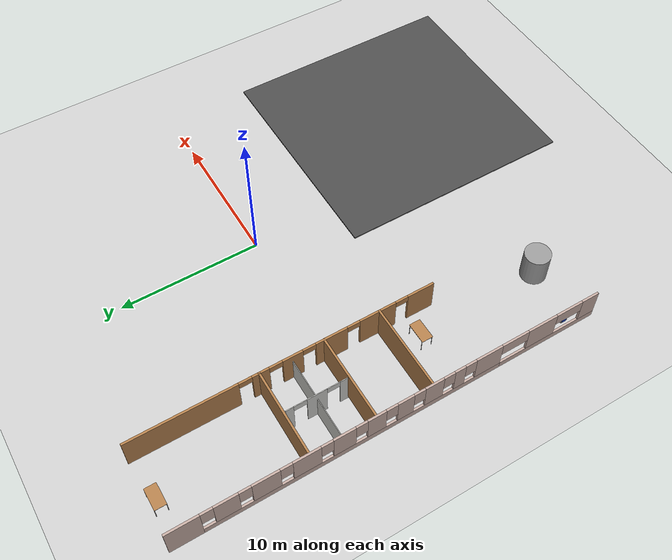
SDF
<sdf version="1.7">
 <world name="default">
  <model name="ground_plane">
   <static>1</static>
   <link name="link">
    <collision name="collision">
     <geometry><plane><normal>0 0 1</normal><size>100 100</size></plane></geometry>
     <surface>
      <contact><collide_bitmask>65535</collide_bitmask></contact>
      <friction><ode><mu>100</mu><mu2>50</mu2></ode></friction>
     </surface>
    </collision>
    <visual name="visual">
     <cast_shadows>0</cast_shadows>
     <geometry><plane><normal>0 0 1</normal><size>100 100</size></plane></geometry>
     <material>
      <script><uri>file://media/materials/scripts/gazebo.material</uri><name>Gazebo/Grey</name></script>
     </material>
    </visual>
   </link>
  </model>
  <model name="Office">
   <pose>0.30406 -0.9941 0 0 -0 0</pose>
   <link name="Wall_12">
    <pose>-10.5 4.175 0 0 -0 1.5708</pose>
    <visual name="Wall_12_Visual_0">
     <pose>-9.76618 0 1.25 0 -0 0</pose>
     <geometry><box><size>1.96818 0.15 2.5</size></box></geometry>
     <material>
      <script><uri>file://media/materials/scripts/gazebo.material</uri><name>Gazebo/Wood</name></script>
      <ambient>1 1 1 1</ambient>
     </material>
     <meta><layer>0</layer></meta>
    </visual>
    <collision name="Wall_12_Collision_0">
     <geometry><box><size>1.96818 0.15 2.5</size></box></geometry>
     <pose>-9.76618 0 1.25 0 -0 0</pose>
    </collision>
    <visual name="Wall_12_Visual_1">
     <pose>-6.55733 0 1.25 0 -0 0</pose>
     <geometry><box><size>2.64952 0.15 2.5</size></box></geometry>
     <material>
      <script><uri>file://media/materials/scripts/gazebo.material</uri><name>Gazebo/Wood</name></script>
      <ambient>1 1 1 1</ambient>
     </material>
     <meta><layer>0</layer></meta>
    </visual>
    <collision name="Wall_12_Collision_1">
     <geometry><box><size>2.64952 0.15 2.5</size></box></geometry>
     <pose>-6.55733 0 1.25 0 -0 0</pose>
    </collision>
    <visual name="Wall_12_Visual_2">
     <pose>-3.19706 0 1.25 0 -0 0</pose>
     <geometry><box><size>2.27101 0.15 2.5</size></box></geometry>
     <material>
      <script><uri>file://media/materials/scripts/gazebo.material</uri><name>Gazebo/Wood</name></script>
      <ambient>1 1 1 1</ambient>
     </material>
     <meta><layer>0</layer></meta>
    </visual>
    <collision name="Wall_12_Collision_2">
     <geometry><box><size>2.27101 0.15 2.5</size></box></geometry>
     <pose>-3.19706 0 1.25 0 -0 0</pose>
    </collision>
    <visual name="Wall_12_Visual_3">
     <pose>-0.451144 0 1.25 0 -0 0</pose>
     <geometry><box><size>1.42083 0.15 2.5</size></box></geometry>
     <material>
      <script><uri>file://media/materials/scripts/gazebo.material</uri><name>Gazebo/Wood</name></script>
      <ambient>1 1 1 1</ambient>
     </material>
     <meta><layer>0</layer></meta>
    </visual>
    <collision name="Wall_12_Collision_3">
     <geometry><box><size>1.42083 0.15 2.5</size></box></geometry>
     <pose>-0.451144 0 1.25 0 -0 0</pose>
    </collision>
    <visual name="Wall_12_Visual_4">
     <pose>1.7422 0 1.25 0 -0 0</pose>
     <geometry><box><size>1.16586 0.15 2.5</size></box></geometry>
     <material>
      <script><uri>file://media/materials/scripts/gazebo.material</uri><name>Gazebo/Wood</name></script>
      <ambient>1 1 1 1</ambient>
     </material>
     <meta><layer>0</layer></meta>
    </visual>
    <collision name="Wall_12_Collision_4">
     <geometry><box><size>1.16586 0.15 2.5</size></box></geometry>
     <pose>1.7422 0 1.25 0 -0 0</pose>
    </collision>
    <visual name="Wall_12_Visual_5">
     <pose>6.9877 0 1.25 0 -0 0</pose>
     <geometry><box><size>7.52514 0.15 2.5</size></box></geometry>
     <material>
      <script><uri>file://media/materials/scripts/gazebo.material</uri><name>Gazebo/Wood</name></script>
      <ambient>1 1 1 1</ambient>
     </material>
     <meta><layer>0</layer></meta>
    </visual>
    <collision name="Wall_12_Collision_5">
     <geometry><box><size>7.52514 0.15 2.5</size></box></geometry>
     <pose>6.9877 0 1.25 0 -0 0</pose>
    </collision>
    <visual name="Wall_12_Visual_6">
     <pose>-8.33209 0 2.25 0 -0 0</pose>
     <geometry><box><size>0.9 0.15 0.5</size></box></geometry>
     <material>
      <script><uri>file://media/materials/scripts/gazebo.material</uri><name>Gazebo/Wood</name></script>
      <ambient>1 1 1 1</ambient>
     </material>
     <meta><layer>0</layer></meta>
    </visual>
    <collision name="Wall_12_Collision_6">
     <geometry><box><size>0.9 0.15 0.5</size></box></geometry>
     <pose>-8.33209 0 2.25 0 -0 0</pose>
    </collision>
    <visual name="Wall_12_Visual_7">
     <pose>-4.78257 0 2.25 0 -0 0</pose>
     <geometry><box><size>0.9 0.15 0.5</size></box></geometry>
     <material>
      <script><uri>file://media/materials/scripts/gazebo.material</uri><name>Gazebo/Wood</name></script>
      <ambient>1 1 1 1</ambient>
     </material>
     <meta><layer>0</layer></meta>
    </visual>
    <collision name="Wall_12_Collision_7">
     <geometry><box><size>0.9 0.15 0.5</size></box></geometry>
     <pose>-4.78257 0 2.25 0 -0 0</pose>
    </collision>
    <visual name="Wall_12_Visual_8">
     <pose>-1.61156 0 2.25 0 -0 0</pose>
     <geometry><box><size>0.9 0.15 0.5</size></box></geometry>
     <material>
      <script><uri>file://media/materials/scripts/gazebo.material</uri><name>Gazebo/Wood</name></script>
      <ambient>1 1 1 1</ambient>
     </material>
     <meta><layer>0</layer></meta>
    </visual>
    <collision name="Wall_12_Collision_8">
     <geometry><box><size>0.9 0.15 0.5</size></box></geometry>
     <pose>-1.61156 0 2.25 0 -0 0</pose>
    </collision>
    <visual name="Wall_12_Visual_9">
     <pose>0.709272 0 2.25 0 -0 0</pose>
     <geometry><box><size>0.9 0.15 0.5</size></box></geometry>
     <material>
      <script><uri>file://media/materials/scripts/gazebo.material</uri><name>Gazebo/Wood</name></script>
      <ambient>1 1 1 1</ambient>
     </material>
     <meta><layer>0</layer></meta>
    </visual>
    <collision name="Wall_12_Collision_9">
     <geometry><box><size>0.9 0.15 0.5</size></box></geometry>
     <pose>0.709272 0 2.25 0 -0 0</pose>
    </collision>
    <visual name="Wall_12_Visual_10">
     <pose>2.77513 0 2.25 0 -0 0</pose>
     <geometry><box><size>0.9 0.15 0.5</size></box></geometry>
     <material>
      <script><uri>file://media/materials/scripts/gazebo.material</uri><name>Gazebo/Wood</name></script>
      <ambient>1 1 1 1</ambient>
     </material>
     <meta><layer>0</layer></meta>
    </visual>
    <collision name="Wall_12_Collision_10">
     <geometry><box><size>0.9 0.15 0.5</size></box></geometry>
     <pose>2.77513 0 2.25 0 -0 0</pose>
    </collision>
   </link>
   <link name="Wall_38">
    <collision name="Wall_38_Collision">
     <geometry><box><size>6 0.15 2.5</size></box></geometry>
     <pose>0 0 1.25 0 -0 0</pose>
    </collision>
    <visual name="Wall_38_Visual">
     <pose>0 0 1.25 0 -0 0</pose>
     <geometry><box><size>6 0.15 2.5</size></box></geometry>
     <material>
      <script><uri>file://media/materials/scripts/gazebo.material</uri><name>Gazebo/Wood</name></script>
      <ambient>1 1 1 1</ambient>
     </material>
     <meta><layer>0</layer></meta>
    </visual>
    <pose>-13.425 6 0 0 -0 3.14159</pose>
   </link>
   <link name="Wall_41">
    <collision name="Wall_41_Collision">
     <geometry><box><size>6 0.15 2.5</size></box></geometry>
     <pose>0 0 1.25 0 -0 0</pose>
    </collision>
    <visual name="Wall_41_Visual">
     <pose>0 0 1.25 0 -0 0</pose>
     <geometry><box><size>6 0.15 2.5</size></box></geometry>
     <material>
      <script><uri>file://media/materials/scripts/gazebo.material</uri><name>Gazebo/Wood</name></script>
      <ambient>1 1 1 1</ambient>
     </material>
     <meta><layer>0</layer></meta>
    </visual>
    <pose>-13.425 1.5 0 0 -0 0</pose>
   </link>
   <link name="Wall_43">
    <collision name="Wall_43_Collision">
     <geometry><box><size>6 0.15 2.5</size></box></geometry>
     <pose>0 0 1.25 0 -0 0</pose>
    </collision>
    <visual name="Wall_43_Visual">
     <pose>0 0 1.25 0 -0 0</pose>
     <geometry><box><size>6 0.15 2.5</size></box></geometry>
     <material>
      <script><uri>file://media/materials/scripts/gazebo.material</uri><name>Gazebo/Wood</name></script>
      <ambient>1 1 1 1</ambient>
     </material>
     <meta><layer>0</layer></meta>
    </visual>
    <pose>-13.425 -2.5 0 0 -0 0</pose>
   </link>
   <link name="Wall_45">
    <collision name="Wall_45_Collision">
     <geometry><box><size>5.9 0.05 2</size></box></geometry>
     <pose>0 0 1 0 -0 0</pose>
    </collision>
    <visual name="Wall_45_Visual">
     <pose>0 0 1 0 -0 0</pose>
     <geometry><box><size>5.9 0.05 2</size></box></geometry>
     <material>
      <script><uri>file://media/materials/scripts/gazebo.material</uri><name>Gazebo/CeilingTiled</name></script>
      <ambient>1 1 1 1</ambient>
     </material>
     <meta><layer>0</layer></meta>
    </visual>
    <pose>-13.425 3.75 0 0 -0 3.14159</pose>
   </link>
   <link name="Wall_47">
    <pose>-13.5 3.75 0 0 -0 -1.5708</pose>
    <visual name="Wall_47_Visual_0">
     <pose>-1.85464 0 1.25 0 -0 0</pose>
     <geometry><box><size>0.540727 0.05 2.5</size></box></geometry>
     <material>
      <script><uri>file://media/materials/scripts/gazebo.material</uri><name>Gazebo/CeilingTiled</name></script>
      <ambient>1 1 1 1</ambient>
     </material>
     <meta><layer>0</layer></meta>
    </visual>
    <collision name="Wall_47_Collision_0">
     <geometry><box><size>0.540727 0.05 2.5</size></box></geometry>
     <pose>-1.85464 0 1.25 0 -0 0</pose>
    </collision>
    <visual name="Wall_47_Visual_1">
     <pose>-0.00216 0 1.25 0 -0 0</pose>
     <geometry><box><size>1.36423 0.05 2.5</size></box></geometry>
     <material>
      <script><uri>file://media/materials/scripts/gazebo.material</uri><name>Gazebo/CeilingTiled</name></script>
      <ambient>1 1 1 1</ambient>
     </material>
     <meta><layer>0</layer></meta>
    </visual>
    <collision name="Wall_47_Collision_1">
     <geometry><box><size>1.36423 0.05 2.5</size></box></geometry>
     <pose>-0.00216 0 1.25 0 -0 0</pose>
    </collision>
    <visual name="Wall_47_Visual_2">
     <pose>1.85248 0 1.25 0 -0 0</pose>
     <geometry><box><size>0.545047 0.05 2.5</size></box></geometry>
     <material>
      <script><uri>file://media/materials/scripts/gazebo.material</uri><name>Gazebo/CeilingTiled</name></script>
      <ambient>1 1 1 1</ambient>
     </material>
     <meta><layer>0</layer></meta>
    </visual>
    <collision name="Wall_47_Collision_2">
     <geometry><box><size>0.545047 0.05 2.5</size></box></geometry>
     <pose>1.85248 0 1.25 0 -0 0</pose>
    </collision>
    <visual name="Wall_47_Visual_3">
     <pose>-1.13427 0 2.25 0 -0 0</pose>
     <geometry><box><size>0.9 0.05 0.5</size></box></geometry>
     <material>
      <script><uri>file://media/materials/scripts/gazebo.material</uri><name>Gazebo/CeilingTiled</name></script>
      <ambient>1 1 1 1</ambient>
     </material>
     <meta><layer>0</layer></meta>
    </visual>
    <collision name="Wall_47_Collision_3">
     <geometry><box><size>0.9 0.05 0.5</size></box></geometry>
     <pose>-1.13427 0 2.25 0 -0 0</pose>
    </collision>
    <visual name="Wall_47_Visual_4">
     <pose>1.12995 0 2.25 0 -0 0</pose>
     <geometry><box><size>0.9 0.05 0.5</size></box></geometry>
     <material>
      <script><uri>file://media/materials/scripts/gazebo.material</uri><name>Gazebo/CeilingTiled</name></script>
      <ambient>1 1 1 1</ambient>
     </material>
     <meta><layer>0</layer></meta>
    </visual>
    <collision name="Wall_47_Collision_4">
     <geometry><box><size>0.9 0.05 0.5</size></box></geometry>
     <pose>1.12995 0 2.25 0 -0 0</pose>
    </collision>
   </link>
   <link name="Wall_5">
    <pose>-16.5 0 0 0 -0 -1.5708</pose>
    <visual name="Wall_5_Visual_0">
     <pose>-13.9772 0 1.25 0 -0 0</pose>
     <geometry><box><size>2.19564 0.15 2.5</size></box></geometry>
     <material>
      <script><uri>file://media/materials/scripts/gazebo.material</uri><name>Gazebo/Grey</name></script>
      <ambient>0.760784 0.662745 0.627451 1</ambient>
     </material>
     <meta><layer>0</layer></meta>
    </visual>
    <collision name="Wall_5_Collision_0">
     <geometry><box><size>2.19564 0.15 2.5</size></box></geometry>
     <pose>-13.9772 0 1.25 0 -0 0</pose>
    </collision>
    <visual name="Wall_5_Visual_1">
     <pose>-2.64558 0 0.25 0 -0 0</pose>
     <geometry><box><size>20.4675 0.15 0.5</size></box></geometry>
     <material>
      <script><uri>file://media/materials/scripts/gazebo.material</uri><name>Gazebo/Grey</name></script>
      <ambient>0.760784 0.662745 0.627451 1</ambient>
     </material>
     <meta><layer>0</layer></meta>
    </visual>
    <collision name="Wall_5_Collision_1">
     <geometry><box><size>20.4675 0.15 0.5</size></box></geometry>
     <pose>-2.64558 0 0.25 0 -0 0</pose>
    </collision>
    <visual name="Wall_5_Visual_2">
     <pose>11.3316 0 0.25 0 -0 0</pose>
     <geometry><box><size>7.48681 0.15 0.5</size></box></geometry>
     <material>
      <script><uri>file://media/materials/scripts/gazebo.material</uri><name>Gazebo/Grey</name></script>
      <ambient>0.760784 0.662745 0.627451 1</ambient>
     </material>
     <meta><layer>0</layer></meta>
    </visual>
    <collision name="Wall_5_Collision_2">
     <geometry><box><size>7.48681 0.15 0.5</size></box></geometry>
     <pose>11.3316 0 0.25 0 -0 0</pose>
    </collision>
    <visual name="Wall_5_Visual_3">
     <pose>10.6889 0 1.5 0 -0 0</pose>
     <geometry><box><size>2.20133 0.15 2</size></box></geometry>
     <material>
      <script><uri>file://media/materials/scripts/gazebo.material</uri><name>Gazebo/Grey</name></script>
      <ambient>0.760784 0.662745 0.627451 1</ambient>
     </material>
     <meta><layer>0</layer></meta>
    </visual>
    <collision name="Wall_5_Collision_3">
     <geometry><box><size>2.20133 0.15 2</size></box></geometry>
     <pose>10.6889 0 1.5 0 -0 0</pose>
    </collision>
    <visual name="Wall_5_Visual_4">
     <pose>14.4323 0 1.5 0 -0 0</pose>
     <geometry><box><size>1.28547 0.15 2</size></box></geometry>
     <material>
      <script><uri>file://media/materials/scripts/gazebo.material</uri><name>Gazebo/Grey</name></script>
      <ambient>0.760784 0.662745 0.627451 1</ambient>
     </material>
     <meta><layer>0</layer></meta>
    </visual>
    <collision name="Wall_5_Collision_4">
     <geometry><box><size>1.28547 0.15 2</size></box></geometry>
     <pose>14.4323 0 1.5 0 -0 0</pose>
    </collision>
    <visual name="Wall_5_Visual_5">
     <pose>-11.292 0 1.5 0 -0 0</pose>
     <geometry><box><size>1.57467 0.15 2</size></box></geometry>
     <material>
      <script><uri>file://media/materials/scripts/gazebo.material</uri><name>Gazebo/Grey</name></script>
      <ambient>0.760784 0.662745 0.627451 1</ambient>
     </material>
     <meta><layer>0</layer></meta>
    </visual>
    <collision name="Wall_5_Collision_5">
     <geometry><box><size>1.57467 0.15 2</size></box></geometry>
     <pose>-11.292 0 1.5 0 -0 0</pose>
    </collision>
    <visual name="Wall_5_Visual_6">
     <pose>-8.79558 0 1.5 0 -0 0</pose>
     <geometry><box><size>1.81822 0.15 2</size></box></geometry>
     <material>
      <script><uri>file://media/materials/scripts/gazebo.material</uri><name>Gazebo/Grey</name></script>
      <ambient>0.760784 0.662745 0.627451 1</ambient>
     </material>
     <meta><layer>0</layer></meta>
    </visual>
    <collision name="Wall_5_Collision_6">
     <geometry><box><size>1.81822 0.15 2</size></box></geometry>
     <pose>-8.79558 0 1.5 0 -0 0</pose>
    </collision>
    <visual name="Wall_5_Visual_7">
     <pose>-6.15707 0 1.5 0 -0 0</pose>
     <geometry><box><size>1.8588 0.15 2</size></box></geometry>
     <material>
      <script><uri>file://media/materials/scripts/gazebo.material</uri><name>Gazebo/Grey</name></script>
      <ambient>0.760784 0.662745 0.627451 1</ambient>
     </material>
     <meta><layer>0</layer></meta>
    </visual>
    <collision name="Wall_5_Collision_7">
     <geometry><box><size>1.8588 0.15 2</size></box></geometry>
     <pose>-6.15707 0 1.5 0 -0 0</pose>
    </collision>
    <visual name="Wall_5_Visual_8">
     <pose>-3.66725 0 1.5 0 -0 0</pose>
     <geometry><box><size>1.52083 0.15 2</size></box></geometry>
     <material>
      <script><uri>file://media/materials/scripts/gazebo.material</uri><name>Gazebo/Grey</name></script>
      <ambient>0.760784 0.662745 0.627451 1</ambient>
     </material>
     <meta><layer>0</layer></meta>
    </visual>
    <collision name="Wall_5_Collision_8">
     <geometry><box><size>1.52083 0.15 2</size></box></geometry>
     <pose>-3.66725 0 1.5 0 -0 0</pose>
    </collision>
    <visual name="Wall_5_Visual_9">
     <pose>-1.4651 0 1.5 0 -0 0</pose>
     <geometry><box><size>1.28347 0.15 2</size></box></geometry>
     <material>
      <script><uri>file://media/materials/scripts/gazebo.material</uri><name>Gazebo/Grey</name></script>
      <ambient>0.760784 0.662745 0.627451 1</ambient>
     </material>
     <meta><layer>0</layer></meta>
    </visual>
    <collision name="Wall_5_Collision_9">
     <geometry><box><size>1.28347 0.15 2</size></box></geometry>
     <pose>-1.4651 0 1.5 0 -0 0</pose>
    </collision>
    <visual name="Wall_5_Visual_10">
     <pose>0.550862 0 1.5 0 -0 0</pose>
     <geometry><box><size>1.14844 0.15 2</size></box></geometry>
     <material>
      <script><uri>file://media/materials/scripts/gazebo.material</uri><name>Gazebo/Grey</name></script>
      <ambient>0.760784 0.662745 0.627451 1</ambient>
     </material>
     <meta><layer>0</layer></meta>
    </visual>
    <collision name="Wall_5_Collision_10">
     <geometry><box><size>1.14844 0.15 2</size></box></geometry>
     <pose>0.550862 0 1.5 0 -0 0</pose>
    </collision>
    <visual name="Wall_5_Visual_11">
     <pose>2.59064 0 1.5 0 -0 0</pose>
     <geometry><box><size>1.33111 0.15 2</size></box></geometry>
     <material>
      <script><uri>file://media/materials/scripts/gazebo.material</uri><name>Gazebo/Grey</name></script>
      <ambient>0.760784 0.662745 0.627451 1</ambient>
     </material>
     <meta><layer>0</layer></meta>
    </visual>
    <collision name="Wall_5_Collision_11">
     <geometry><box><size>1.33111 0.15 2</size></box></geometry>
     <pose>2.59064 0 1.5 0 -0 0</pose>
    </collision>
    <visual name="Wall_5_Visual_12">
     <pose>4.44775 0 1.5 0 -0 0</pose>
     <geometry><box><size>0.783111 0.15 2</size></box></geometry>
     <material>
      <script><uri>file://media/materials/scripts/gazebo.material</uri><name>Gazebo/Grey</name></script>
      <ambient>0.760784 0.662745 0.627451 1</ambient>
     </material>
     <meta><layer>0</layer></meta>
    </visual>
    <collision name="Wall_5_Collision_12">
     <geometry><box><size>0.783111 0.15 2</size></box></geometry>
     <pose>4.44775 0 1.5 0 -0 0</pose>
    </collision>
    <visual name="Wall_5_Visual_13">
     <pose>6.61375 0 1.5 0 -0 0</pose>
     <geometry><box><size>1.94889 0.15 2</size></box></geometry>
     <material>
      <script><uri>file://media/materials/scripts/gazebo.material</uri><name>Gazebo/Grey</name></script>
      <ambient>0.760784 0.662745 0.627451 1</ambient>
     </material>
     <meta><layer>0</layer></meta>
    </visual>
    <collision name="Wall_5_Collision_13">
     <geometry><box><size>1.94889 0.15 2</size></box></geometry>
     <pose>6.61375 0 1.5 0 -0 0</pose>
    </collision>
    <visual name="Wall_5_Visual_14">
     <pose>6.61375 0 1.5 0 -0 0</pose>
     <geometry><box><size>1.94889 0.15 2</size></box></geometry>
     <material>
      <script><uri>file://media/materials/scripts/gazebo.material</uri><name>Gazebo/Grey</name></script>
      <ambient>0.760784 0.662745 0.627451 1</ambient>
     </material>
     <meta><layer>0</layer></meta>
    </visual>
    <collision name="Wall_5_Collision_14">
     <geometry><box><size>1.94889 0.15 2</size></box></geometry>
     <pose>6.61375 0 1.5 0 -0 0</pose>
    </collision>
    <visual name="Wall_5_Visual_15">
     <pose>-12.4794 0 1.9 0 -0 0</pose>
     <geometry><box><size>0.8 0.15 1.2</size></box></geometry>
     <material>
      <script><uri>file://media/materials/scripts/gazebo.material</uri><name>Gazebo/Grey</name></script>
      <ambient>0.760784 0.662745 0.627451 1</ambient>
     </material>
     <meta><layer>0</layer></meta>
    </visual>
    <collision name="Wall_5_Collision_15">
     <geometry><box><size>0.8 0.15 1.2</size></box></geometry>
     <pose>-12.4794 0 1.9 0 -0 0</pose>
    </collision>
    <visual name="Wall_5_Visual_16">
     <pose>-10.1047 0 1.9 0 -0 0</pose>
     <geometry><box><size>0.8 0.15 1.2</size></box></geometry>
     <material>
      <script><uri>file://media/materials/scripts/gazebo.material</uri><name>Gazebo/Grey</name></script>
      <ambient>0.760784 0.662745 0.627451 1</ambient>
     </material>
     <meta><layer>0</layer></meta>
    </visual>
    <collision name="Wall_5_Collision_16">
     <geometry><box><size>0.8 0.15 1.2</size></box></geometry>
     <pose>-10.1047 0 1.9 0 -0 0</pose>
    </collision>
    <visual name="Wall_5_Visual_17">
     <pose>-7.48647 0 1.9 0 -0 0</pose>
     <geometry><box><size>0.8 0.15 1.2</size></box></geometry>
     <material>
      <script><uri>file://media/materials/scripts/gazebo.material</uri><name>Gazebo/Grey</name></script>
      <ambient>0.760784 0.662745 0.627451 1</ambient>
     </material>
     <meta><layer>0</layer></meta>
    </visual>
    <collision name="Wall_5_Collision_17">
     <geometry><box><size>0.8 0.15 1.2</size></box></geometry>
     <pose>-7.48647 0 1.9 0 -0 0</pose>
    </collision>
    <visual name="Wall_5_Visual_18">
     <pose>-4.82767 0 1.9 0 -0 0</pose>
     <geometry><box><size>0.8 0.15 1.2</size></box></geometry>
     <material>
      <script><uri>file://media/materials/scripts/gazebo.material</uri><name>Gazebo/Grey</name></script>
      <ambient>0.760784 0.662745 0.627451 1</ambient>
     </material>
     <meta><layer>0</layer></meta>
    </visual>
    <collision name="Wall_5_Collision_18">
     <geometry><box><size>0.8 0.15 1.2</size></box></geometry>
     <pose>-4.82767 0 1.9 0 -0 0</pose>
    </collision>
    <visual name="Wall_5_Visual_19">
     <pose>-2.50684 0 1.9 0 -0 0</pose>
     <geometry><box><size>0.8 0.15 1.2</size></box></geometry>
     <material>
      <script><uri>file://media/materials/scripts/gazebo.material</uri><name>Gazebo/Grey</name></script>
      <ambient>0.760784 0.662745 0.627451 1</ambient>
     </material>
     <meta><layer>0</layer></meta>
    </visual>
    <collision name="Wall_5_Collision_19">
     <geometry><box><size>0.8 0.15 1.2</size></box></geometry>
     <pose>-2.50684 0 1.9 0 -0 0</pose>
    </collision>
    <visual name="Wall_5_Visual_20">
     <pose>-0.42336 0 1.9 0 -0 0</pose>
     <geometry><box><size>0.8 0.15 1.2</size></box></geometry>
     <material>
      <script><uri>file://media/materials/scripts/gazebo.material</uri><name>Gazebo/Grey</name></script>
      <ambient>0.760784 0.662745 0.627451 1</ambient>
     </material>
     <meta><layer>0</layer></meta>
    </visual>
    <collision name="Wall_5_Collision_20">
     <geometry><box><size>0.8 0.15 1.2</size></box></geometry>
     <pose>-0.42336 0 1.9 0 -0 0</pose>
    </collision>
    <visual name="Wall_5_Visual_21">
     <pose>1.52508 0 1.9 0 -0 0</pose>
     <geometry><box><size>0.8 0.15 1.2</size></box></geometry>
     <material>
      <script><uri>file://media/materials/scripts/gazebo.material</uri><name>Gazebo/Grey</name></script>
      <ambient>0.760784 0.662745 0.627451 1</ambient>
     </material>
     <meta><layer>0</layer></meta>
    </visual>
    <collision name="Wall_5_Collision_21">
     <geometry><box><size>0.8 0.15 1.2</size></box></geometry>
     <pose>1.52508 0 1.9 0 -0 0</pose>
    </collision>
    <visual name="Wall_5_Visual_22">
     <pose>3.65619 0 1.9 0 -0 0</pose>
     <geometry><box><size>0.8 0.15 1.2</size></box></geometry>
     <material>
      <script><uri>file://media/materials/scripts/gazebo.material</uri><name>Gazebo/Grey</name></script>
      <ambient>0.760784 0.662745 0.627451 1</ambient>
     </material>
     <meta><layer>0</layer></meta>
    </visual>
    <collision name="Wall_5_Collision_22">
     <geometry><box><size>0.8 0.15 1.2</size></box></geometry>
     <pose>3.65619 0 1.9 0 -0 0</pose>
    </collision>
    <visual name="Wall_5_Visual_23">
     <pose>5.2393 0 1.9 0 -0 0</pose>
     <geometry><box><size>0.8 0.15 1.2</size></box></geometry>
     <material>
      <script><uri>file://media/materials/scripts/gazebo.material</uri><name>Gazebo/Grey</name></script>
      <ambient>0.760784 0.662745 0.627451 1</ambient>
     </material>
     <meta><layer>0</layer></meta>
    </visual>
    <collision name="Wall_5_Collision_23">
     <geometry><box><size>0.8 0.15 1.2</size></box></geometry>
     <pose>5.2393 0 1.9 0 -0 0</pose>
    </collision>
    <visual name="Wall_5_Visual_24">
     <pose>12.7895 0 2 0 -0 0</pose>
     <geometry><box><size>2 0.15 1</size></box></geometry>
     <material>
      <script><uri>file://media/materials/scripts/gazebo.material</uri><name>Gazebo/Grey</name></script>
      <ambient>0.760784 0.662745 0.627451 1</ambient>
     </material>
     <meta><layer>0</layer></meta>
    </visual>
    <collision name="Wall_5_Collision_24">
     <geometry><box><size>2 0.15 1</size></box></geometry>
     <pose>12.7895 0 2 0 -0 0</pose>
    </collision>
    <visual name="Wall_5_Visual_25">
     <pose>8.58819 0 2 0 -0 0</pose>
     <geometry><box><size>2 0.15 1</size></box></geometry>
     <material>
      <script><uri>file://media/materials/scripts/gazebo.material</uri><name>Gazebo/Grey</name></script>
      <ambient>0.760784 0.662745 0.627451 1</ambient>
     </material>
     <meta><layer>0</layer></meta>
    </visual>
    <collision name="Wall_5_Collision_25">
     <geometry><box><size>2 0.15 1</size></box></geometry>
     <pose>8.58819 0 2 0 -0 0</pose>
    </collision>
    <visual name="Wall_5_Visual_26">
     <pose>8.58819 0 2 0 -0 0</pose>
     <geometry><box><size>2 0.15 1</size></box></geometry>
     <material>
      <script><uri>file://media/materials/scripts/gazebo.material</uri><name>Gazebo/Grey</name></script>
      <ambient>0.760784 0.662745 0.627451 1</ambient>
     </material>
     <meta><layer>0</layer></meta>
    </visual>
    <collision name="Wall_5_Collision_26">
     <geometry><box><size>2 0.15 1</size></box></geometry>
     <pose>8.58819 0 2 0 -0 0</pose>
    </collision>
   </link>
   <static>1</static>
  </model>
  <model name="asphalt_plane">
   <static>1</static>
   <link name="link">
    <collision name="collision"><geometry><box><size>16.6553 17.3976 0.1</size></box></geometry></collision>
    <visual name="visual">
     <cast_shadows>0</cast_shadows>
     <geometry><box><size>16.6553 17.3976 0.1</size></box></geometry>
     <material>
      <script>
       <uri>model://asphalt_plane/materials/scripts</uri>
       <uri>model://asphalt_plane/materials/textures</uri>
       <name>vrc/asphalt</name>
      </script>
     </material>
    </visual>
   </link>
   <pose>5.32516 -14.8382 0 0 -0 0</pose>
  </model>
  <model name="unit_cylinder">
   <pose>-11.692 -14.8498 1.13061 0 -1e-06 -1.6e-05</pose>
   <link name="link">
    <inertial>
     <mass>1</mass>
     <inertia><ixx>0.145833</ixx><ixy>0</ixy><ixz>0</ixz><iyy>0.145833</iyy><iyz>0</iyz><izz>0.125</izz></inertia>
    </inertial>
    <collision name="collision">
     <geometry><cylinder><radius>0.908109</radius><length>2.26124</length></cylinder></geometry>
    </collision>
    <visual name="visual">
     <geometry><cylinder><radius>0.908109</radius><length>2.26124</length></cylinder></geometry>
     <material>
      <script><name>Gazebo/Grey</name><uri>file://media/materials/scripts/gazebo.material</uri></script>
     </material>
    </visual>
   </link>
  </model>
  <model name="table_clone_3">
   <static>1</static>
   <link name="link">
    <collision name="surface">
     <pose>0 0 1 0 -0 0</pose>
     <geometry><box><size>1.5 0.8 0.03</size></box></geometry>
     <surface><friction><ode><mu>0.6</mu><mu2>0.6</mu2></ode></friction></surface>
    </collision>
    <visual name="visual1">
     <pose>0 0 1 0 -0 0</pose>
     <geometry><box><size>1.5 0.8 0.03</size></box></geometry>
     <material>
      <script><uri>file://media/materials/scripts/gazebo.material</uri><name>Gazebo/Wood</name></script>
     </material>
    </visual>
    <collision name="front_left_leg">
     <pose>0.68 0.38 0.5 0 -0 0</pose>
     <geometry><cylinder><radius>0.02</radius><length>1</length></cylinder></geometry>
    </collision>
    <visual name="front_left_legv">
     <pose>0.68 0.38 0.5 0 -0 0</pose>
     <geometry><cylinder><radius>0.02</radius><length>1</length></cylinder></geometry>
     <material>
      <script><uri>file://media/materials/scripts/gazebo.material</uri><name>Gazebo/Grey</name></script>
     </material>
    </visual>
    <collision name="front_right_leg">
     <pose>0.68 -0.38 0.5 0 -0 0</pose>
     <geometry><cylinder><radius>0.02</radius><length>1</length></cylinder></geometry>
    </collision>
    <visual name="front_right_legv">
     <pose>0.68 -0.38 0.5 0 -0 0</pose>
     <geometry><cylinder><radius>0.02</radius><length>1</length></cylinder></geometry>
     <material>
      <script><uri>file://media/materials/scripts/gazebo.material</uri><name>Gazebo/Grey</name></script>
     </material>
    </visual>
    <collision name="back_right_leg">
     <pose>-0.68 -0.38 0.5 0 -0 0</pose>
     <geometry><cylinder><radius>0.02</radius><length>1</length></cylinder></geometry>
    </collision>
    <visual name="back_right_legv">
     <pose>-0.68 -0.38 0.5 0 -0 0</pose>
     <geometry><cylinder><radius>0.02</radius><length>1</length></cylinder></geometry>
     <material>
      <script><uri>file://media/materials/scripts/gazebo.material</uri><name>Gazebo/Grey</name></script>
     </material>
    </visual>
    <collision name="back_left_leg">
     <pose>-0.68 0.38 0.5 0 -0 0</pose>
     <geometry><cylinder><radius>0.02</radius><length>1</length></cylinder></geometry>
    </collision>
    <visual name="back_left_legv">
     <pose>-0.68 0.38 0.5 0 -0 0</pose>
     <geometry><cylinder><radius>0.02</radius><length>1</length></cylinder></geometry>
     <material>
      <script><uri>file://media/materials/scripts/gazebo.material</uri><name>Gazebo/Grey</name></script>
     </material>
    </visual>
   </link>
   <pose>-12.0417 -5.49177 0 0 -0 0</pose>
  </model>
  <model name="table_clone_4">
   <static>1</static>
   <link name="link">
    <collision name="surface">
     <pose>0 0 1 0 -0 0</pose>
     <geometry><box><size>1.5 0.8 0.03</size></box></geometry>
     <surface><friction><ode><mu>0.6</mu><mu2>0.6</mu2></ode></friction></surface>
    </collision>
    <visual name="visual1">
     <pose>0 0 1 0 -0 0</pose>
     <geometry><box><size>1.5 0.8 0.03</size></box></geometry>
     <material>
      <script><uri>file://media/materials/scripts/gazebo.material</uri><name>Gazebo/Wood</name></script>
     </material>
    </visual>
    <collision name="front_left_leg">
     <pose>0.68 0.38 0.5 0 -0 0</pose>
     <geometry><cylinder><radius>0.02</radius><length>1</length></cylinder></geometry>
    </collision>
    <visual name="front_left_legv">
     <pose>0.68 0.38 0.5 0 -0 0</pose>
     <geometry><cylinder><radius>0.02</radius><length>1</length></cylinder></geometry>
     <material>
      <script><uri>file://media/materials/scripts/gazebo.material</uri><name>Gazebo/Grey</name></script>
     </material>
    </visual>
    <collision name="front_right_leg">
     <pose>0.68 -0.38 0.5 0 -0 0</pose>
     <geometry><cylinder><radius>0.02</radius><length>1</length></cylinder></geometry>
    </collision>
    <visual name="front_right_legv">
     <pose>0.68 -0.38 0.5 0 -0 0</pose>
     <geometry><cylinder><radius>0.02</radius><length>1</length></cylinder></geometry>
     <material>
      <script><uri>file://media/materials/scripts/gazebo.material</uri><name>Gazebo/Grey</name></script>
     </material>
    </visual>
    <collision name="back_right_leg">
     <pose>-0.68 -0.38 0.5 0 -0 0</pose>
     <geometry><cylinder><radius>0.02</radius><length>1</length></cylinder></geometry>
    </collision>
    <visual name="back_right_legv">
     <pose>-0.68 -0.38 0.5 0 -0 0</pose>
     <geometry><cylinder><radius>0.02</radius><length>1</length></cylinder></geometry>
     <material>
      <script><uri>file://media/materials/scripts/gazebo.material</uri><name>Gazebo/Grey</name></script>
     </material>
    </visual>
    <collision name="back_left_leg">
     <pose>-0.68 0.38 0.5 0 -0 0</pose>
     <geometry><cylinder><radius>0.02</radius><length>1</length></cylinder></geometry>
    </collision>
    <visual name="back_left_legv">
     <pose>-0.68 0.38 0.5 0 -0 0</pose>
     <geometry><cylinder><radius>0.02</radius><length>1</length></cylinder></geometry>
     <material>
      <script><uri>file://media/materials/scripts/gazebo.material</uri><name>Gazebo/Grey</name></script>
     </material>
    </visual>
   </link>
   <pose>-13.3403 13.4439 0 0 -0 0</pose>
  </model>
  <model name="Mobile_robot_1">
   <link name="body">
    <inertial>
     <mass>1</mass>
     <inertia>
      <ixx>0.166667</ixx>
      <ixy>0</ixy>
      <ixz>0</ixz>
      <iyy>0.166667</iyy>
      <iyz>0</iyz>
      <izz>0.166667</izz>
     </inertia>
    </inertial>
    <pose>0 0 0.15 0 -0 0</pose>
    <visual name="visual">
     <geometry><box><size>0.6 0.3 0.2</size></box></geometry>
     <material>
      <lighting>1</lighting>
      <script><uri>file://media/materials/scripts/gazebo.material</uri><name>Gazebo/Blue</name></script>
      <shader type="pixel"><normal_map>__default__</normal_map></shader>
      <ambient>0.1 0.1 0.2 1</ambient>
      <diffuse>0 0 0.2 1</diffuse>
      <specular>0 0 0 1</specular>
      <emissive>0 0 0 1</emissive>
     </material>
    </visual>
    <collision name="collision">
     <geometry><box><size>0.6 0.3 0.2</size></box></geometry>
     <surface>
      <friction>
       <ode><mu>1</mu><mu2>1</mu2><fdir1>0 0 0</fdir1><slip1>0</slip1><slip2>0</slip2></ode>
       <torsional>
        <coefficient>1</coefficient>
        <patch_radius>0</patch_radius>
        <surface_radius>0</surface_radius>
        <use_patch_radius>1</use_patch_radius>
        <ode><slip>0</slip></ode>
       </torsional>
      </friction>
      <bounce><restitution_coefficient>0</restitution_coefficient><threshold>1e+06</threshold></bounce>
      <contact>
       <collide_without_contact>0</collide_without_contact>
       <collide_without_contact_bitmask>1</collide_without_contact_bitmask>
       <collide_bitmask>1</collide_bitmask>
       <ode>
        <soft_cfm>0</soft_cfm>
        <soft_erp>0.2</soft_erp>
        <kp>1e+13</kp>
        <kd>1</kd>
        <max_vel>0.01</max_vel>
        <min_depth>0</min_depth>
       </ode>
       <bullet>
        <split_impulse>1</split_impulse>
        <split_impulse_penetration_threshold>-0.01</split_impulse_penetration_threshold>
        <soft_cfm>0</soft_cfm>
        <soft_erp>0.2</soft_erp>
        <kp>1e+13</kp>
        <kd>1</kd>
       </bullet>
      </contact>
     </surface>
    </collision>
   </link>
   <link name="wheel1">
    <inertial>
     <mass>0.5</mass>
     <inertia><ixx>0.145833</ixx><ixy>0</ixy><ixz>0</ixz><iyy>0.145833</iyy><iyz>0</iyz><izz>0.125</izz></inertia>
    </inertial>
    <pose>0.2 -0.2 0.1 1.5708 -0 0</pose>
    <visual name="visual">
     <geometry><cylinder><radius>0.1</radius><length>0.07</length></cylinder></geometry>
     <material>
      <lighting>1</lighting>
      <script><uri>file://media/materials/scripts/gazebo.material</uri><name>Gazebo/Grey</name></script>
      <shader type="pixel"><normal_map>__default__</normal_map></shader>
      <ambient>0 0 0 1</ambient>
      <diffuse>0.6 0.6 0.6 1</diffuse>
      <specular>0 0 0 1</specular>
      <emissive>0 0 0 1</emissive>
     </material>
    </visual>
    <collision name="collision">
     <geometry><cylinder><radius>0.1</radius><length>0.07</length></cylinder></geometry>
     <surface>
      <friction>
       <ode><mu>1</mu><mu2>1</mu2><fdir1>0 0 0</fdir1><slip1>0</slip1><slip2>0</slip2></ode>
       <torsional>
        <coefficient>1</coefficient>
        <patch_radius>0</patch_radius>
        <surface_radius>0</surface_radius>
        <use_patch_radius>1</use_patch_radius>
        <ode><slip>0</slip></ode>
       </torsional>
      </friction>
      <bounce><restitution_coefficient>0</restitution_coefficient><threshold>1e+06</threshold></bounce>
      <contact>
       <collide_without_contact>0</collide_without_contact>
       <collide_without_contact_bitmask>1</collide_without_contact_bitmask>
       <collide_bitmask>1</collide_bitmask>
       <ode>
        <soft_cfm>0</soft_cfm>
        <soft_erp>0.2</soft_erp>
        <kp>1e+13</kp>
        <kd>1</kd>
        <max_vel>0.01</max_vel>
        <min_depth>0</min_depth>
       </ode>
       <bullet>
        <split_impulse>1</split_impulse>
        <split_impulse_penetration_threshold>-0.01</split_impulse_penetration_threshold>
        <soft_cfm>0</soft_cfm>
        <soft_erp>0.2</soft_erp>
        <kp>1e+13</kp>
        <kd>1</kd>
       </bullet>
      </contact>
     </surface>
    </collision>
   </link>
   <link name="wheel2">
    <inertial>
     <mass>0.5</mass>
     <inertia><ixx>0.145833</ixx><ixy>0</ixy><ixz>0</ixz><iyy>0.145833</iyy><iyz>0</iyz><izz>0.125</izz></inertia>
    </inertial>
    <pose>-0.2 -0.2 0.1 1.5708 -0 0</pose>
    <visual name="visual">
     <geometry><cylinder><radius>0.1</radius><length>0.07</length></cylinder></geometry>
     <material>
      <lighting>1</lighting>
      <script><uri>file://media/materials/scripts/gazebo.material</uri><name>Gazebo/Grey</name></script>
      <shader type="pixel"><normal_map>__default__</normal_map></shader>
      <ambient>0 0 0 1</ambient>
      <diffuse>0.6 0.6 0.6 1</diffuse>
      <specular>0 0 0 1</specular>
      <emissive>0 0 0 1</emissive>
     </material>
    </visual>
    <collision name="collision">
     <geometry><cylinder><radius>0.1</radius><length>0.07</length></cylinder></geometry>
     <surface>
      <friction>
       <ode><mu>1</mu><mu2>1</mu2><fdir1>0 0 0</fdir1><slip1>0</slip1><slip2>0</slip2></ode>
       <torsional>
        <coefficient>1</coefficient>
        <patch_radius>0</patch_radius>
        <surface_radius>0</surface_radius>
        <use_patch_radius>1</use_patch_radius>
        <ode><slip>0</slip></ode>
       </torsional>
      </friction>
      <bounce><restitution_coefficient>0</restitution_coefficient><threshold>1e+06</threshold></bounce>
      <contact>
       <collide_without_contact>0</collide_without_contact>
       <collide_without_contact_bitmask>1</collide_without_contact_bitmask>
       <collide_bitmask>1</collide_bitmask>
       <ode>
        <soft_cfm>0</soft_cfm>
        <soft_erp>0.2</soft_erp>
        <kp>1e+13</kp>
        <kd>1</kd>
        <max_vel>0.01</max_vel>
        <min_depth>0</min_depth>
       </ode>
       <bullet>
        <split_impulse>1</split_impulse>
        <split_impulse_penetration_threshold>-0.01</split_impulse_penetration_threshold>
        <soft_cfm>0</soft_cfm>
        <soft_erp>0.2</soft_erp>
        <kp>1e+13</kp>
        <kd>1</kd>
       </bullet>
      </contact>
     </surface>
    </collision>
   </link>
   <link name="wheel3">
    <inertial>
     <mass>0.5</mass>
     <inertia><ixx>0.145833</ixx><ixy>0</ixy><ixz>0</ixz><iyy>0.145833</iyy><iyz>0</iyz><izz>0.125</izz></inertia>
    </inertial>
    <pose>-0.2 0.2 0.1 1.5708 -0 0</pose>
    <visual name="visual">
     <geometry><cylinder><radius>0.1</radius><length>0.07</length></cylinder></geometry>
     <material>
      <lighting>1</lighting>
      <script><uri>file://media/materials/scripts/gazebo.material</uri><name>Gazebo/Grey</name></script>
      <shader type="pixel"><normal_map>__default__</normal_map></shader>
      <ambient>0 0 0 1</ambient>
      <diffuse>0.6 0.6 0.6 1</diffuse>
      <specular>0 0 0 1</specular>
      <emissive>0 0 0 1</emissive>
     </material>
    </visual>
    <collision name="collision">
     <geometry><cylinder><radius>0.1</radius><length>0.07</length></cylinder></geometry>
     <surface>
      <friction>
       <ode><mu>1</mu><mu2>1</mu2><fdir1>0 0 0</fdir1><slip1>0</slip1><slip2>0</slip2></ode>
       <torsional>
        <coefficient>1</coefficient>
        <patch_radius>0</patch_radius>
        <surface_radius>0</surface_radius>
        <use_patch_radius>1</use_patch_radius>
        <ode><slip>0</slip></ode>
       </torsional>
      </friction>
      <bounce><restitution_coefficient>0</restitution_coefficient><threshold>1e+06</threshold></bounce>
      <contact>
       <collide_without_contact>0</collide_without_contact>
       <collide_without_contact_bitmask>1</collide_without_contact_bitmask>
       <collide_bitmask>1</collide_bitmask>
       <ode>
        <soft_cfm>0</soft_cfm>
        <soft_erp>0.2</soft_erp>
        <kp>1e+13</kp>
        <kd>1</kd>
        <max_vel>0.01</max_vel>
        <min_depth>0</min_depth>
       </ode>
       <bullet>
        <split_impulse>1</split_impulse>
        <split_impulse_penetration_threshold>-0.01</split_impulse_penetration_threshold>
        <soft_cfm>0</soft_cfm>
        <soft_erp>0.2</soft_erp>
        <kp>1e+13</kp>
        <kd>1</kd>
       </bullet>
      </contact>
     </surface>
    </collision>
   </link>
   <link name="wheel4">
    <inertial>
     <mass>0.5</mass>
     <inertia><ixx>0.145833</ixx><ixy>0</ixy><ixz>0</ixz><iyy>0.145833</iyy><iyz>0</iyz><izz>0.125</izz></inertia>
    </inertial>
    <pose>0.2 0.2 0.1 1.5708 -0 0</pose>
    <visual name="visual">
     <geometry><cylinder><radius>0.1</radius><length>0.07</length></cylinder></geometry>
     <material>
      <lighting>1</lighting>
      <script><uri>file://media/materials/scripts/gazebo.material</uri><name>Gazebo/Grey</name></script>
      <shader type="pixel"><normal_map>__default__</normal_map></shader>
      <ambient>0 0 0 1</ambient>
      <diffuse>0.6 0.6 0.6 1</diffuse>
      <specular>0 0 0 1</specular>
      <emissive>0 0 0 1</emissive>
     </material>
    </visual>
    <collision name="collision">
     <geometry><cylinder><radius>0.1</radius><length>0.07</length></cylinder></geometry>
     <surface>
      <friction>
       <ode><mu>1</mu><mu2>1</mu2><fdir1>0 0 0</fdir1><slip1>0</slip1><slip2>0</slip2></ode>
       <torsional>
        <coefficient>1</coefficient>
        <patch_radius>0</patch_radius>
        <surface_radius>0</surface_radius>
        <use_patch_radius>1</use_patch_radius>
        <ode><slip>0</slip></ode>
       </torsional>
      </friction>
      <bounce><restitution_coefficient>0</restitution_coefficient><threshold>1e+06</threshold></bounce>
      <contact>
       <collide_without_contact>0</collide_without_contact>
       <collide_without_contact_bitmask>1</collide_without_contact_bitmask>
       <collide_bitmask>1</collide_bitmask>
       <ode>
        <soft_cfm>0</soft_cfm>
        <soft_erp>0.2</soft_erp>
        <kp>1e+13</kp>
        <kd>1</kd>
        <max_vel>0.01</max_vel>
        <min_depth>0</min_depth>
       </ode>
       <bullet>
        <split_impulse>1</split_impulse>
        <split_impulse_penetration_threshold>-0.01</split_impulse_penetration_threshold>
        <soft_cfm>0</soft_cfm>
        <soft_erp>0.2</soft_erp>
        <kp>1e+13</kp>
        <kd>1</kd>
       </bullet>
      </contact>
     </surface>
    </collision>
   </link>
   <link name="head">
    <inertial>
     <mass>0.3</mass>
     <inertia>
      <ixx>0.166667</ixx>
      <ixy>0</ixy>
      <ixz>0</ixz>
      <iyy>0.166667</iyy>
      <iyz>0</iyz>
      <izz>0.166667</izz>
     </inertia>
    </inertial>
    <pose>0 0 0.275 0 -0 0</pose>
    <visual name="visual">
     <geometry><box><size>0.2 0.15 0.05</size></box></geometry>
     <material>
      <lighting>1</lighting>
      <script><uri>file://media/materials/scripts/gazebo.material</uri><name>Gazebo/Grey</name></script>
      <shader type="pixel"><normal_map>__default__</normal_map></shader>
      <ambient>0.4 0.4 0.4 1</ambient>
      <diffuse>0.7 0.7 0.7 1</diffuse>
      <specular>0.01 0.01 0.01 1</specular>
      <emissive>0 0 0 1</emissive>
     </material>
    </visual>
    <collision name="collision">
     <geometry><box><size>0.2 0.15 0.05</size></box></geometry>
     <surface>
      <friction>
       <ode><mu>1</mu><mu2>1</mu2><fdir1>0 0 0</fdir1><slip1>0</slip1><slip2>0</slip2></ode>
       <torsional>
        <coefficient>1</coefficient>
        <patch_radius>0</patch_radius>
        <surface_radius>0</surface_radius>
        <use_patch_radius>1</use_patch_radius>
        <ode><slip>0</slip></ode>
       </torsional>
      </friction>
      <bounce><restitution_coefficient>0</restitution_coefficient><threshold>1e+06</threshold></bounce>
      <contact>
       <collide_without_contact>0</collide_without_contact>
       <collide_without_contact_bitmask>1</collide_without_contact_bitmask>
       <collide_bitmask>1</collide_bitmask>
       <ode>
        <soft_cfm>0</soft_cfm>
        <soft_erp>0.2</soft_erp>
        <kp>1e+13</kp>
        <kd>1</kd>
        <max_vel>0.01</max_vel>
        <min_depth>0</min_depth>
       </ode>
       <bullet>
        <split_impulse>1</split_impulse>
        <split_impulse_penetration_threshold>-0.01</split_impulse_penetration_threshold>
        <soft_cfm>0</soft_cfm>
        <soft_erp>0.2</soft_erp>
        <kp>1e+13</kp>
        <kd>1</kd>
       </bullet>
      </contact>
     </surface>
    </collision>
   </link>
   <joint name="link_0_JOINT_0" type="fixed">
    <parent>body</parent>
    <child>head</child>
    <physics>
     <ode><limit><cfm>0</cfm><erp>0.2</erp></limit><suspension><cfm>0</cfm><erp>0.2</erp></suspension></ode>
    </physics>
   </joint>
   <joint name="link_0_JOINT_1" type="revolute">
    <parent>body</parent>
    <child>wheel1</child>
    <axis>
     <xyz>0 0 1</xyz>
     <limit>
      <lower>-1.79769e+308</lower>
      <upper>1.79769e+308</upper>
      <effort>-1</effort>
      <velocity>-1</velocity>
     </limit>
     <dynamics>
      <spring_reference>0</spring_reference>
      <spring_stiffness>0</spring_stiffness>
      <damping>0</damping>
     </dynamics>
    </axis>
    <physics>
     <ode><limit><cfm>0</cfm><erp>0.2</erp></limit><suspension><cfm>0</cfm><erp>0.2</erp></suspension></ode>
    </physics>
   </joint>
   <joint name="link_0_JOINT_2" type="revolute">
    <parent>body</parent>
    <child>wheel2</child>
    <axis>
     <xyz>0 0 1</xyz>
     <limit>
      <lower>-1.79769e+308</lower>
      <upper>1.79769e+308</upper>
      <effort>-1</effort>
      <velocity>-1</velocity>
     </limit>
     <dynamics>
      <spring_reference>0</spring_reference>
      <spring_stiffness>0</spring_stiffness>
      <damping>0</damping>
     </dynamics>
    </axis>
    <physics>
     <ode><limit><cfm>0</cfm><erp>0.2</erp></limit><suspension><cfm>0</cfm><erp>0.2</erp></suspension></ode>
    </physics>
   </joint>
   <joint name="link_0_JOINT_3" type="revolute">
    <parent>body</parent>
    <child>wheel3</child>
    <axis>
     <xyz>0 0 1</xyz>
     <limit>
      <lower>-1.79769e+308</lower>
      <upper>1.79769e+308</upper>
      <effort>-1</effort>
      <velocity>-1</velocity>
     </limit>
     <dynamics>
      <spring_reference>0</spring_reference>
      <spring_stiffness>0</spring_stiffness>
      <damping>0</damping>
     </dynamics>
    </axis>
    <physics>
     <ode><limit><cfm>0</cfm><erp>0.2</erp></limit><suspension><cfm>0</cfm><erp>0.2</erp></suspension></ode>
    </physics>
   </joint>
   <joint name="link_0_JOINT_4" type="revolute">
    <parent>body</parent>
    <child>wheel4</child>
    <axis>
     <xyz>0 0 1</xyz>
     <limit>
      <lower>-1.79769e+308</lower>
      <upper>1.79769e+308</upper>
      <effort>-1</effort>
      <velocity>-1</velocity>
     </limit>
     <dynamics>
      <spring_reference>0</spring_reference>
      <spring_stiffness>0</spring_stiffness>
      <damping>0</damping>
     </dynamics>
    </axis>
    <physics>
     <ode><limit><cfm>0</cfm><erp>0.2</erp></limit><suspension><cfm>0</cfm><erp>0.2</erp></suspension></ode>
    </physics>
   </joint>
   <static>0</static>
   <pose>-15.5038 -14.189 -1e-06 -0 5e-06 -0.00032</pose>
  </model>
 </world>
</sdf>
